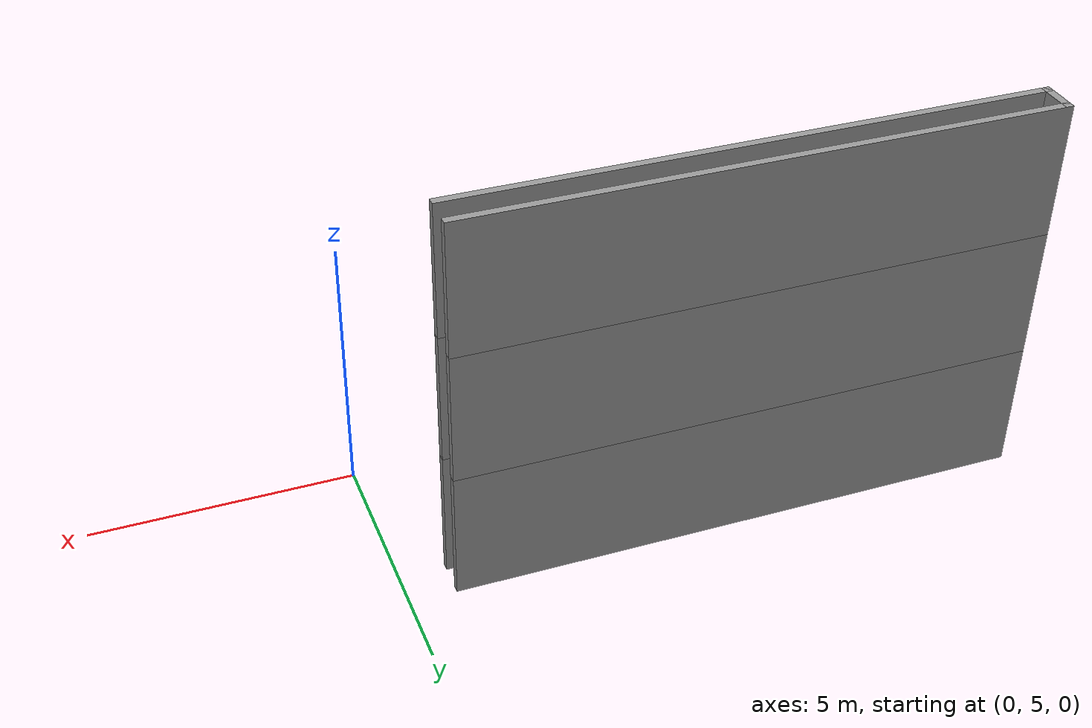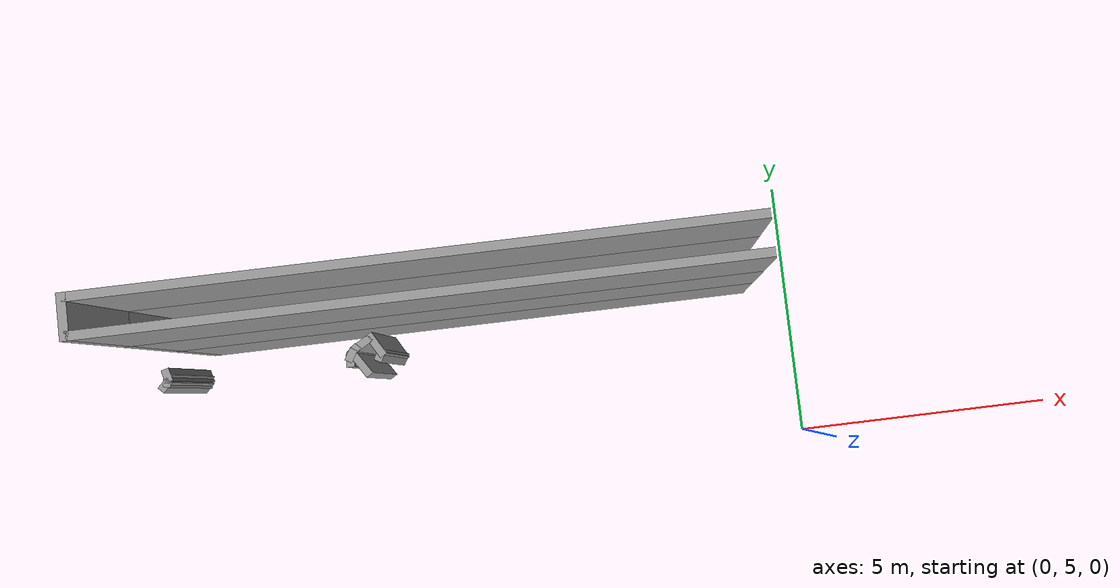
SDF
<sdf version="1.7">
 <model name="mapagazebo">
  <pose>-4.67869 9.01252 0 0 -0 0</pose>
  <link name="Wall_1340">
   <collision name="Wall_1340_Collision">
    <geometry><box><size>11 0.15 2.5</size></box></geometry>
    <pose>0 0 1.25 0 -0 0</pose>
   </collision>
   <visual name="Wall_1340_Visual">
    <pose>0 0 1.25 0 -0 0</pose>
    <geometry><box><size>11 0.15 2.5</size></box></geometry>
    <material>
     <script><uri>file://media/materials/scripts/gazebo.material</uri><name>Gazebo/Grey</name></script>
     <ambient>1 1 1 1</ambient>
    </material>
    <meta><layer>1</layer></meta>
   </visual>
   <pose>-1.68691 -1.00769 2.5 0 -0 0</pose>
  </link>
  <link name="Wall_1342">
   <collision name="Wall_1342_Collision">
    <geometry><box><size>11 0.15 2.5</size></box></geometry>
    <pose>0 0 1.25 0 -0 0</pose>
   </collision>
   <visual name="Wall_1342_Visual">
    <pose>0 0 1.25 0 -0 0</pose>
    <geometry><box><size>11 0.15 2.5</size></box></geometry>
    <material>
     <script><uri>file://media/materials/scripts/gazebo.material</uri><name>Gazebo/Grey</name></script>
     <ambient>1 1 1 1</ambient>
    </material>
    <meta><layer>1</layer></meta>
   </visual>
   <pose>-1.68691 -0.407692 2.5 0 -0 3.14159</pose>
  </link>
  <link name="Wall_1343">
   <collision name="Wall_1343_Collision">
    <geometry><box><size>0.75 0.15 2.5</size></box></geometry>
    <pose>0 0 1.25 0 -0 0</pose>
   </collision>
   <visual name="Wall_1343_Visual">
    <pose>0 0 1.25 0 -0 0</pose>
    <geometry><box><size>0.75 0.15 2.5</size></box></geometry>
    <material>
     <script><uri>file://media/materials/scripts/gazebo.material</uri><name>Gazebo/Grey</name></script>
     <ambient>1 1 1 1</ambient>
    </material>
    <meta><layer>1</layer></meta>
   </visual>
   <pose>-7.11191 -0.707692 2.5 0 -0 -1.5708</pose>
  </link>
  <link name="Wall_1344">
   <collision name="Wall_1344_Collision">
    <geometry><box><size>0.15 0.15 2.5</size></box></geometry>
    <pose>0 0 1.25 0 -0 0</pose>
   </collision>
   <visual name="Wall_1344_Visual">
    <pose>0 0 1.25 0 -0 0</pose>
    <geometry><box><size>0.15 0.15 2.5</size></box></geometry>
    <material>
     <script><uri>file://media/materials/scripts/gazebo.material</uri><name>Gazebo/Grey</name></script>
     <ambient>1 1 1 1</ambient>
    </material>
    <meta><layer>1</layer></meta>
   </visual>
   <pose>-7.11191 -1.00769 2.5 0 -0 0</pose>
  </link>
  <link name="Wall_1964">
   <collision name="Wall_1964_Collision">
    <geometry><box><size>11 0.15 2.5</size></box></geometry>
    <pose>0 0 1.25 0 -0 0</pose>
   </collision>
   <visual name="Wall_1964_Visual">
    <pose>0 0 1.25 0 -0 0</pose>
    <geometry><box><size>11 0.15 2.5</size></box></geometry>
    <material>
     <script><uri>file://media/materials/scripts/gazebo.material</uri><name>Gazebo/Grey</name></script>
     <ambient>1 1 1 1</ambient>
    </material>
    <meta><layer>2</layer></meta>
   </visual>
   <pose>-1.68691 -1.00769 5 0 -0 0</pose>
  </link>
  <link name="Wall_1966">
   <collision name="Wall_1966_Collision">
    <geometry><box><size>11 0.15 2.5</size></box></geometry>
    <pose>0 0 1.25 0 -0 0</pose>
   </collision>
   <visual name="Wall_1966_Visual">
    <pose>0 0 1.25 0 -0 0</pose>
    <geometry><box><size>11 0.15 2.5</size></box></geometry>
    <material>
     <script><uri>file://media/materials/scripts/gazebo.material</uri><name>Gazebo/Grey</name></script>
     <ambient>1 1 1 1</ambient>
    </material>
    <meta><layer>2</layer></meta>
   </visual>
   <pose>-1.68691 -0.407692 5 0 -0 3.14159</pose>
  </link>
  <link name="Wall_1967">
   <collision name="Wall_1967_Collision">
    <geometry><box><size>0.75 0.15 2.5</size></box></geometry>
    <pose>0 0 1.25 0 -0 0</pose>
   </collision>
   <visual name="Wall_1967_Visual">
    <pose>0 0 1.25 0 -0 0</pose>
    <geometry><box><size>0.75 0.15 2.5</size></box></geometry>
    <material>
     <script><uri>file://media/materials/scripts/gazebo.material</uri><name>Gazebo/Grey</name></script>
     <ambient>1 1 1 1</ambient>
    </material>
    <meta><layer>2</layer></meta>
   </visual>
   <pose>-7.11191 -0.707692 5 0 -0 -1.5708</pose>
  </link>
  <link name="Wall_1968">
   <collision name="Wall_1968_Collision">
    <geometry><box><size>0.15 0.15 2.5</size></box></geometry>
    <pose>0 0 1.25 0 -0 0</pose>
   </collision>
   <visual name="Wall_1968_Visual">
    <pose>0 0 1.25 0 -0 0</pose>
    <geometry><box><size>0.15 0.15 2.5</size></box></geometry>
    <material>
     <script><uri>file://media/materials/scripts/gazebo.material</uri><name>Gazebo/Grey</name></script>
     <ambient>1 1 1 1</ambient>
    </material>
    <meta><layer>2</layer></meta>
   </visual>
   <pose>-7.11191 -1.00769 5 0 -0 0</pose>
  </link>
  <link name="Wall_2200">
   <collision name="Wall_2200_Collision">
    <geometry><box><size>0.25 0.15 2.5</size></box></geometry>
    <pose>0 0 1.25 0 -0 0</pose>
   </collision>
   <visual name="Wall_2200_Visual">
    <pose>0 0 1.25 0 -0 0</pose>
    <geometry><box><size>0.25 0.15 2.5</size></box></geometry>
    <material>
     <script><uri>file://media/materials/scripts/gazebo.material</uri><name>Gazebo/Grey</name></script>
     <ambient>1 1 1 1</ambient>
    </material>
    <meta><layer>0</layer></meta>
   </visual>
   <pose>-7.35545 -1.50671 0 0 -0 -1.309</pose>
  </link>
  <link name="Wall_2201">
   <collision name="Wall_2201_Collision">
    <geometry><box><size>0.25 0.15 2.5</size></box></geometry>
    <pose>0 0 1.25 0 -0 0</pose>
   </collision>
   <visual name="Wall_2201_Visual">
    <pose>0 0 1.25 0 -0 0</pose>
    <geometry><box><size>0.25 0.15 2.5</size></box></geometry>
    <material>
     <script><uri>file://media/materials/scripts/gazebo.material</uri><name>Gazebo/Grey</name></script>
     <ambient>1 1 1 1</ambient>
    </material>
    <meta><layer>0</layer></meta>
   </visual>
   <pose>-7.35545 -1.6033 0 0 -0 -1.8326</pose>
  </link>
  <link name="Wall_2202">
   <collision name="Wall_2202_Collision">
    <geometry><box><size>0.25 0.15 2.5</size></box></geometry>
    <pose>0 0 1.25 0 -0 0</pose>
   </collision>
   <visual name="Wall_2202_Visual">
    <pose>0 0 1.25 0 -0 0</pose>
    <geometry><box><size>0.25 0.15 2.5</size></box></geometry>
    <material>
     <script><uri>file://media/materials/scripts/gazebo.material</uri><name>Gazebo/Grey</name></script>
     <ambient>1 1 1 1</ambient>
    </material>
    <meta><layer>0</layer></meta>
   </visual>
   <pose>-7.40375 -1.68695 0 0 -0 -2.35619</pose>
  </link>
  <link name="Wall_2206">
   <collision name="Wall_2206_Collision">
    <geometry><box><size>0.25 0.15 2.5</size></box></geometry>
    <pose>0 0 1.25 0 -0 0</pose>
   </collision>
   <visual name="Wall_2206_Visual">
    <pose>0 0 1.25 0 -0 0</pose>
    <geometry><box><size>0.25 0.15 2.5</size></box></geometry>
    <material>
     <script><uri>file://media/materials/scripts/gazebo.material</uri><name>Gazebo/Grey</name></script>
     <ambient>1 1 1 1</ambient>
    </material>
    <meta><layer>0</layer></meta>
   </visual>
   <pose>-3.90137 -1.63271 0 0 -0 1.5708</pose>
  </link>
  <link name="Wall_2207">
   <collision name="Wall_2207_Collision">
    <geometry><box><size>0.25 0.15 2.5</size></box></geometry>
    <pose>0 0 1.25 0 -0 0</pose>
   </collision>
   <visual name="Wall_2207_Visual">
    <pose>0 0 1.25 0 -0 0</pose>
    <geometry><box><size>0.25 0.15 2.5</size></box></geometry>
    <material>
     <script><uri>file://media/materials/scripts/gazebo.material</uri><name>Gazebo/Grey</name></script>
     <ambient>1 1 1 1</ambient>
    </material>
    <meta><layer>0</layer></meta>
   </visual>
   <pose>-3.87637 -1.53941 0 0 -0 1.0472</pose>
  </link>
  <link name="Wall_2208">
   <collision name="Wall_2208_Collision">
    <geometry><box><size>0.25 0.15 2.5</size></box></geometry>
    <pose>0 0 1.25 0 -0 0</pose>
   </collision>
   <visual name="Wall_2208_Visual">
    <pose>0 0 1.25 0 -0 0</pose>
    <geometry><box><size>0.25 0.15 2.5</size></box></geometry>
    <material>
     <script><uri>file://media/materials/scripts/gazebo.material</uri><name>Gazebo/Grey</name></script>
     <ambient>1 1 1 1</ambient>
    </material>
    <meta><layer>0</layer></meta>
   </visual>
   <pose>-3.81602 -1.46076 0 0 -0 0.785398</pose>
  </link>
  <link name="Wall_2209">
   <collision name="Wall_2209_Collision">
    <geometry><box><size>0.5 0.15 2.5</size></box></geometry>
    <pose>0 0 1.25 0 -0 0</pose>
   </collision>
   <visual name="Wall_2209_Visual">
    <pose>0 0 1.25 0 -0 0</pose>
    <geometry><box><size>0.5 0.15 2.5</size></box></geometry>
    <material>
     <script><uri>file://media/materials/scripts/gazebo.material</uri><name>Gazebo/Grey</name></script>
     <ambient>1 1 1 1</ambient>
    </material>
    <meta><layer>0</layer></meta>
   </visual>
   <pose>-3.62911 -1.3379 0 0 -0 0.523599</pose>
  </link>
  <link name="Wall_2210">
   <collision name="Wall_2210_Collision">
    <geometry><box><size>0.5 0.15 2.5</size></box></geometry>
    <pose>0 0 1.25 0 -0 0</pose>
   </collision>
   <visual name="Wall_2210_Visual">
    <pose>0 0 1.25 0 -0 0</pose>
    <geometry><box><size>0.5 0.15 2.5</size></box></geometry>
    <material>
     <script><uri>file://media/materials/scripts/gazebo.material</uri><name>Gazebo/Grey</name></script>
     <ambient>1 1 1 1</ambient>
    </material>
    <meta><layer>0</layer></meta>
   </visual>
   <pose>-3.39005 -1.40195 0 0 -0 -1.0472</pose>
  </link>
  <link name="Wall_2211">
   <collision name="Wall_2211_Collision">
    <geometry><box><size>0.25 0.15 2.5</size></box></geometry>
    <pose>0 0 1.25 0 -0 0</pose>
   </collision>
   <visual name="Wall_2211_Visual">
    <pose>0 0 1.25 0 -0 0</pose>
    <geometry><box><size>0.25 0.15 2.5</size></box></geometry>
    <material>
     <script><uri>file://media/materials/scripts/gazebo.material</uri><name>Gazebo/Grey</name></script>
     <ambient>1 1 1 1</ambient>
    </material>
    <meta><layer>0</layer></meta>
   </visual>
   <pose>-3.32755 -1.59681 0 0 -0 -2.0944</pose>
  </link>
  <link name="Wall_2214">
   <collision name="Wall_2214_Collision">
    <geometry><box><size>0.615221 0.15 2.5</size></box></geometry>
    <pose>0 0 1.25 0 -0 0</pose>
   </collision>
   <visual name="Wall_2214_Visual">
    <pose>0 0 1.25 0 -0 0</pose>
    <geometry><box><size>0.615221 0.15 2.5</size></box></geometry>
    <material>
     <script><uri>file://media/materials/scripts/gazebo.material</uri><name>Gazebo/Grey</name></script>
     <ambient>1 1 1 1</ambient>
    </material>
    <meta><layer>0</layer></meta>
   </visual>
   <pose>-3.72571 -1.69185 0 0 -0 2.14152</pose>
  </link>
  <link name="Wall_708">
   <collision name="Wall_708_Collision">
    <geometry><box><size>11 0.15 2.5</size></box></geometry>
    <pose>0 0 1.25 0 -0 0</pose>
   </collision>
   <visual name="Wall_708_Visual">
    <pose>0 0 1.25 0 -0 0</pose>
    <geometry><box><size>11 0.15 2.5</size></box></geometry>
    <material>
     <script><uri>file://media/materials/scripts/gazebo.material</uri><name>Gazebo/Grey</name></script>
     <ambient>1 1 1 1</ambient>
    </material>
    <meta><layer>0</layer></meta>
   </visual>
   <pose>-1.68691 -1.00769 0 0 -0 0</pose>
  </link>
  <link name="Wall_710">
   <collision name="Wall_710_Collision">
    <geometry><box><size>11 0.15 2.5</size></box></geometry>
    <pose>0 0 1.25 0 -0 0</pose>
   </collision>
   <visual name="Wall_710_Visual">
    <pose>0 0 1.25 0 -0 0</pose>
    <geometry><box><size>11 0.15 2.5</size></box></geometry>
    <material>
     <script><uri>file://media/materials/scripts/gazebo.material</uri><name>Gazebo/Grey</name></script>
     <ambient>1 1 1 1</ambient>
    </material>
    <meta><layer>0</layer></meta>
   </visual>
   <pose>-1.68691 -0.407693 0 0 -0 3.14159</pose>
  </link>
  <link name="Wall_711">
   <collision name="Wall_711_Collision">
    <geometry><box><size>0.75 0.15 2.5</size></box></geometry>
    <pose>0 0 1.25 0 -0 0</pose>
   </collision>
   <visual name="Wall_711_Visual">
    <pose>0 0 1.25 0 -0 0</pose>
    <geometry><box><size>0.75 0.15 2.5</size></box></geometry>
    <material>
     <script><uri>file://media/materials/scripts/gazebo.material</uri><name>Gazebo/Grey</name></script>
     <ambient>1 1 1 1</ambient>
    </material>
    <meta><layer>0</layer></meta>
   </visual>
   <pose>-7.11191 -0.707693 0 0 -0 -1.5708</pose>
  </link>
  <link name="Wall_712">
   <collision name="Wall_712_Collision">
    <geometry><box><size>0.15 0.15 2.5</size></box></geometry>
    <pose>0 0 1.25 0 -0 0</pose>
   </collision>
   <visual name="Wall_712_Visual">
    <pose>0 0 1.25 0 -0 0</pose>
    <geometry><box><size>0.15 0.15 2.5</size></box></geometry>
    <material>
     <script><uri>file://media/materials/scripts/gazebo.material</uri><name>Gazebo/Grey</name></script>
     <ambient>1 1 1 1</ambient>
    </material>
    <meta><layer>0</layer></meta>
   </visual>
   <pose>-7.11191 -1.00769 0 0 -0 0</pose>
  </link>
  <static>1</static>
 </model>
</sdf>
